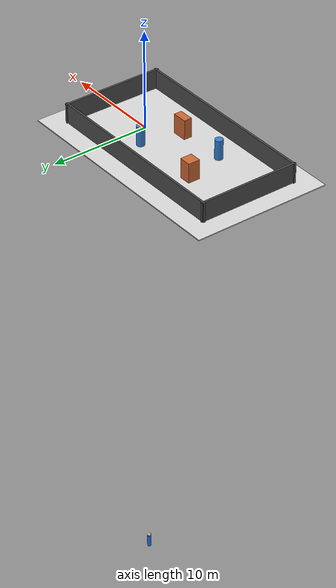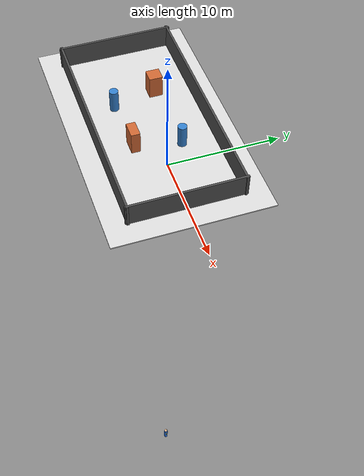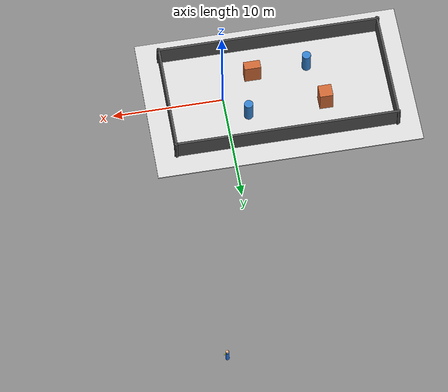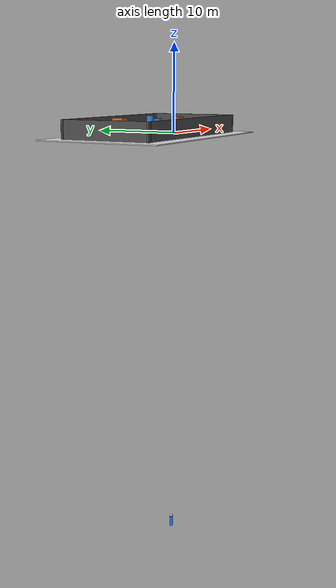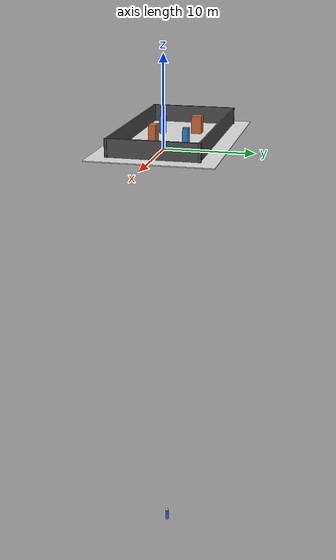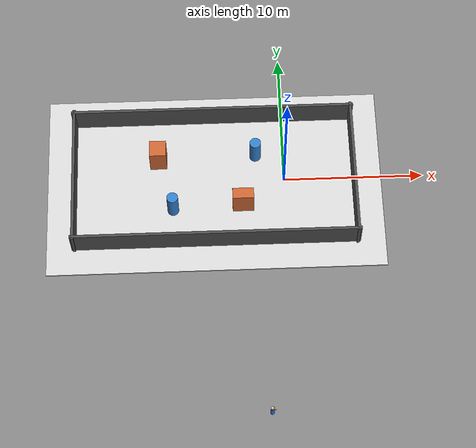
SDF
<?xml version="1.0"?>
<sdf version="1.9">
  <world name="arena_dataset">

    <gravity>0 0 -9.81</gravity>

    <plugin filename="gz-sim-physics-system" name="gz::sim::systems::Physics"/>
    <plugin filename="gz-sim-user-commands-system" name="gz::sim::systems::UserCommands"/>
    <plugin filename="gz-sim-scene-broadcaster-system" name="gz::sim::systems::SceneBroadcaster"/>

    <!-- V4 Multi-human scenario controller.
         Proxy models are both collision objects and visible human markers.
         Skeletal Actor visuals are optional and disabled here. -->
    <plugin
        filename="libmulti_human_scenario_system.so"
        name="custom_corridor::MultiHumanScenarioSystem">
      <human_count>4</human_count>
      <scenario_topic>/multi_human/scenario</scenario_topic>
      <command_topic>/multi_human/command</command_topic>
      <visual_z>1.0</visual_z>
      <proxy_z>0.85</proxy_z>
      <hidden_z>-50.0</hidden_z>
      <animation_name>walk</animation_name>
      <use_actor_visuals>false</use_actor_visuals>
      <auto_start_on_scenario>false</auto_start_on_scenario>
    </plugin>

    <!-- Scene and Physics Optimization -->
    <scene>
      <shadows>false</shadows>
    </scene>

    <physics name="default_physics" type="ode">
      <max_step_size>0.004</max_step_size>
      <real_time_factor>1.0</real_time_factor>
    </physics>

    <!-- Sensors -->
    <plugin
        filename="gz-sim-sensors-system"
        name="gz::sim::systems::Sensors">
      <render_engine>ogre2</render_engine>
    </plugin>

    <light type="directional" name="sun">
      <cast_shadows>false</cast_shadows>
      <pose>0 0 10 0 0 0</pose>
      <diffuse>0.8 0.8 0.8 1</diffuse>
      <specular>0.2 0.2 0.2 1</specular>
      <direction>-0.5 0.1 -0.9</direction>
    </light>

    <!-- Ground Plane -->

    <model name="ground">
      <static>true</static>
      <link name="link">
        <collision name="collision">
          <geometry>
            <box><size>24.0 14.0 0.1</size></box>
          </geometry>
        </collision>
        <visual name="visual">
          <geometry>
            <box><size>24.0 14.0 0.1</size></box>
          </geometry>
          <material>
            <ambient>0.85 0.85 0.85 1</ambient>
            <diffuse>0.85 0.85 0.85 1</diffuse>
          </material>
        </visual>
      </link>
      <pose>-5.0 0.0 -0.05 0 0 0</pose>
    </model>

    <!-- Perimeter Boundary Walls (10m wide, 20m long) -->

    <model name="wall_west">
      <static>true</static>
      <link name="link">
        <collision name="collision">
          <geometry>
            <box><size>0.2 10.4 2.0</size></box>
          </geometry>
        </collision>
        <visual name="visual">
          <geometry>
            <box><size>0.2 10.4 2.0</size></box>
          </geometry>
          <material>
            <ambient>0.3 0.3 0.3 1</ambient>
            <diffuse>0.3 0.3 0.3 1</diffuse>
          </material>
        </visual>
      </link>
      <pose>-15.0 0.0 1.0 0 0 0</pose>
    </model>

    <model name="wall_east">
      <static>true</static>
      <link name="link">
        <collision name="collision">
          <geometry>
            <box><size>0.2 10.4 2.0</size></box>
          </geometry>
        </collision>
        <visual name="visual">
          <geometry>
            <box><size>0.2 10.4 2.0</size></box>
          </geometry>
          <material>
            <ambient>0.3 0.3 0.3 1</ambient>
            <diffuse>0.3 0.3 0.3 1</diffuse>
          </material>
        </visual>
      </link>
      <pose>5.0 0.0 1.0 0 0 0</pose>
    </model>

    <model name="wall_south">
      <static>true</static>
      <link name="link">
        <collision name="collision">
          <geometry>
            <box><size>20.4 0.2 2.0</size></box>
          </geometry>
        </collision>
        <visual name="visual">
          <geometry>
            <box><size>20.4 0.2 2.0</size></box>
          </geometry>
          <material>
            <ambient>0.3 0.3 0.3 1</ambient>
            <diffuse>0.3 0.3 0.3 1</diffuse>
          </material>
        </visual>
      </link>
      <pose>-5.0 -5.0 1.0 0 0 0</pose>
    </model>

    <model name="wall_north">
      <static>true</static>
      <link name="link">
        <collision name="collision">
          <geometry>
            <box><size>20.4 0.2 2.0</size></box>
          </geometry>
        </collision>
        <visual name="visual">
          <geometry>
            <box><size>20.4 0.2 2.0</size></box>
          </geometry>
          <material>
            <ambient>0.3 0.3 0.3 1</ambient>
            <diffuse>0.3 0.3 0.3 1</diffuse>
          </material>
        </visual>
      </link>
      <pose>-5.0 5.0 1.0 0 0 0</pose>
    </model>

    <!-- Static Obstacles -->

    <model name="static_box_A">
      <static>true</static>
      <link name="link">
        <collision name="collision">
          <geometry>
            <box><size>1.2 1.2 2.0</size></box>
          </geometry>
        </collision>
        <visual name="visual">
          <geometry>
            <box><size>1.2 1.2 2.0</size></box>
          </geometry>
          <material>
            <ambient>0.8 0.4 0.2 1</ambient>
            <diffuse>0.8 0.4 0.2 1</diffuse>
          </material>
        </visual>
      </link>
      <pose>-9.0 1.8 1.0 0 0 0</pose>
    </model>

    <model name="static_cylinder_B">
      <static>true</static>
      <link name="link">
        <collision name="collision">
          <geometry>
            <cylinder><radius>0.4</radius><length>2.0</length></cylinder>
          </geometry>
        </collision>
        <visual name="visual">
          <geometry>
            <cylinder><radius>0.4</radius><length>2.0</length></cylinder>
          </geometry>
          <material>
            <ambient>0.2 0.5 0.8 1</ambient>
            <diffuse>0.2 0.5 0.8 1</diffuse>
          </material>
        </visual>
      </link>
      <pose>-8.0 -2.2 1.0 0 0 0</pose>
    </model>

    <model name="static_box_C">
      <static>true</static>
      <link name="link">
        <collision name="collision">
          <geometry>
            <box><size>1.5 0.8 2.0</size></box>
          </geometry>
        </collision>
        <visual name="visual">
          <geometry>
            <box><size>1.5 0.8 2.0</size></box>
          </geometry>
          <material>
            <ambient>0.8 0.4 0.2 1</ambient>
            <diffuse>0.8 0.4 0.2 1</diffuse>
          </material>
        </visual>
      </link>
      <pose>-3.0 -2.0 1.0 0 0 0</pose>
    </model>

    <model name="static_cylinder_D">
      <static>true</static>
      <link name="link">
        <collision name="collision">
          <geometry>
            <cylinder><radius>0.4</radius><length>2.0</length></cylinder>
          </geometry>
        </collision>
        <visual name="visual">
          <geometry>
            <cylinder><radius>0.4</radius><length>2.0</length></cylinder>
          </geometry>
          <material>
            <ambient>0.2 0.5 0.8 1</ambient>
            <diffuse>0.2 0.5 0.8 1</diffuse>
          </material>
        </visual>
      </link>
      <pose>-2.0 2.0 1.0 0 0 0</pose>
    </model>
<model name="human_01_proxy">

      <pose>0 0 -50 0 0 0</pose>

      <static>false</static>
      <self_collide>false</self_collide>

      <link name="body">

        <gravity>false</gravity>

        <kinematic>true</kinematic>

        <collision name="collision">
          <geometry>
            <cylinder>
              <radius>0.22</radius>
              <length>1.70</length>
            </cylinder>
          </geometry>
        </collision>

        <!-- V4 visible human marker: body + head + heading marker.
             These visuals belong to the collision proxy itself, therefore
             what Gazebo shows is exactly what LiDAR / physics use. -->
        <visual name="body_visual">
          <pose>0 0 -0.19 0 0 0</pose>
          <geometry>
            <cylinder>
              <radius>0.20</radius>
              <length>1.32</length>
            </cylinder>
          </geometry>
          <material>
            <ambient>0.15 0.45 0.90 1</ambient>
            <diffuse>0.15 0.45 0.90 1</diffuse>
          </material>
        </visual>

        <visual name="head_visual">
          <pose>0 0 0.62 0 0 0</pose>
          <geometry>
            <sphere>
              <radius>0.18</radius>
            </sphere>
          </geometry>
          <material>
            <ambient>0.95 0.75 0.58 1</ambient>
            <diffuse>0.95 0.75 0.58 1</diffuse>
          </material>
        </visual>

        <!-- Small forward marker so heading is visible in Gazebo.
             +X of the model is the walking direction. -->
        <visual name="heading_marker">
          <pose>0.25 0 0.15 0 0 0</pose>
          <geometry>
            <box>
              <size>0.18 0.08 0.08</size>
            </box>
          </geometry>
          <material>
            <ambient>0.95 0.95 0.10 1</ambient>
            <diffuse>0.95 0.95 0.10 1</diffuse>
          </material>
        </visual>

      </link>

    </model>
<model name="human_02_proxy">

      <pose>0 0 -50 0 0 0</pose>

      <static>false</static>
      <self_collide>false</self_collide>

      <link name="body">

        <gravity>false</gravity>

        <kinematic>true</kinematic>

        <collision name="collision">
          <geometry>
            <cylinder>
              <radius>0.22</radius>
              <length>1.70</length>
            </cylinder>
          </geometry>
        </collision>

        <!-- V4 visible human marker: body + head + heading marker.
             These visuals belong to the collision proxy itself, therefore
             what Gazebo shows is exactly what LiDAR / physics use. -->
        <visual name="body_visual">
          <pose>0 0 -0.19 0 0 0</pose>
          <geometry>
            <cylinder>
              <radius>0.20</radius>
              <length>1.32</length>
            </cylinder>
          </geometry>
          <material>
            <ambient>0.90 0.35 0.20 1</ambient>
            <diffuse>0.90 0.35 0.20 1</diffuse>
          </material>
        </visual>

        <visual name="head_visual">
          <pose>0 0 0.62 0 0 0</pose>
          <geometry>
            <sphere>
              <radius>0.18</radius>
            </sphere>
          </geometry>
          <material>
            <ambient>0.95 0.75 0.58 1</ambient>
            <diffuse>0.95 0.75 0.58 1</diffuse>
          </material>
        </visual>

        <!-- Small forward marker so heading is visible in Gazebo.
             +X of the model is the walking direction. -->
        <visual name="heading_marker">
          <pose>0.25 0 0.15 0 0 0</pose>
          <geometry>
            <box>
              <size>0.18 0.08 0.08</size>
            </box>
          </geometry>
          <material>
            <ambient>0.95 0.95 0.10 1</ambient>
            <diffuse>0.95 0.95 0.10 1</diffuse>
          </material>
        </visual>

      </link>

    </model>
<model name="human_03_proxy">

      <pose>0 0 -50 0 0 0</pose>

      <static>false</static>
      <self_collide>false</self_collide>

      <link name="body">

        <gravity>false</gravity>

        <kinematic>true</kinematic>

        <collision name="collision">
          <geometry>
            <cylinder>
              <radius>0.22</radius>
              <length>1.70</length>
            </cylinder>
          </geometry>
        </collision>

        <!-- V4 visible human marker: body + head + heading marker.
             These visuals belong to the collision proxy itself, therefore
             what Gazebo shows is exactly what LiDAR / physics use. -->
        <visual name="body_visual">
          <pose>0 0 -0.19 0 0 0</pose>
          <geometry>
            <cylinder>
              <radius>0.20</radius>
              <length>1.32</length>
            </cylinder>
          </geometry>
          <material>
            <ambient>0.25 0.70 0.35 1</ambient>
            <diffuse>0.25 0.70 0.35 1</diffuse>
          </material>
        </visual>

        <visual name="head_visual">
          <pose>0 0 0.62 0 0 0</pose>
          <geometry>
            <sphere>
              <radius>0.18</radius>
            </sphere>
          </geometry>
          <material>
            <ambient>0.95 0.75 0.58 1</ambient>
            <diffuse>0.95 0.75 0.58 1</diffuse>
          </material>
        </visual>

        <!-- Small forward marker so heading is visible in Gazebo.
             +X of the model is the walking direction. -->
        <visual name="heading_marker">
          <pose>0.25 0 0.15 0 0 0</pose>
          <geometry>
            <box>
              <size>0.18 0.08 0.08</size>
            </box>
          </geometry>
          <material>
            <ambient>0.95 0.95 0.10 1</ambient>
            <diffuse>0.95 0.95 0.10 1</diffuse>
          </material>
        </visual>

      </link>

    </model>
<model name="human_04_proxy">

      <pose>0 0 -50 0 0 0</pose>

      <static>false</static>
      <self_collide>false</self_collide>

      <link name="body">

        <gravity>false</gravity>

        <kinematic>true</kinematic>

        <collision name="collision">
          <geometry>
            <cylinder>
              <radius>0.22</radius>
              <length>1.70</length>
            </cylinder>
          </geometry>
        </collision>

        <!-- V4 visible human marker: body + head + heading marker.
             These visuals belong to the collision proxy itself, therefore
             what Gazebo shows is exactly what LiDAR / physics use. -->
        <visual name="body_visual">
          <pose>0 0 -0.19 0 0 0</pose>
          <geometry>
            <cylinder>
              <radius>0.20</radius>
              <length>1.32</length>
            </cylinder>
          </geometry>
          <material>
            <ambient>0.65 0.35 0.80 1</ambient>
            <diffuse>0.65 0.35 0.80 1</diffuse>
          </material>
        </visual>

        <visual name="head_visual">
          <pose>0 0 0.62 0 0 0</pose>
          <geometry>
            <sphere>
              <radius>0.18</radius>
            </sphere>
          </geometry>
          <material>
            <ambient>0.95 0.75 0.58 1</ambient>
            <diffuse>0.95 0.75 0.58 1</diffuse>
          </material>
        </visual>

        <!-- Small forward marker so heading is visible in Gazebo.
             +X of the model is the walking direction. -->
        <visual name="heading_marker">
          <pose>0.25 0 0.15 0 0 0</pose>
          <geometry>
            <box>
              <size>0.18 0.08 0.08</size>
            </box>
          </geometry>
          <material>
            <ambient>0.95 0.95 0.10 1</ambient>
            <diffuse>0.95 0.95 0.10 1</diffuse>
          </material>
        </visual>

      </link>

    </model>

  </world>
</sdf>
